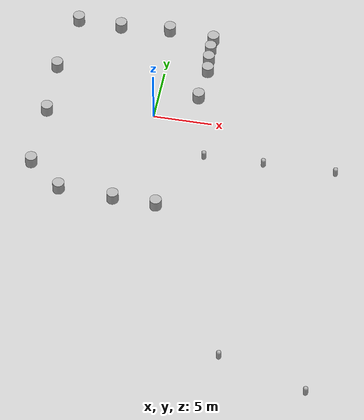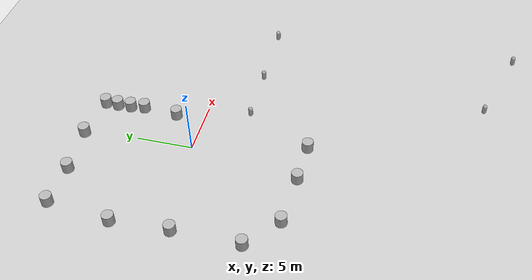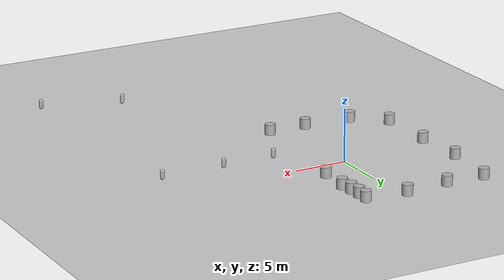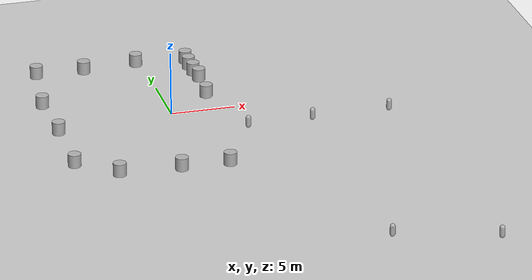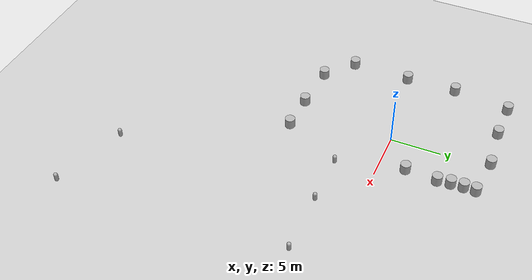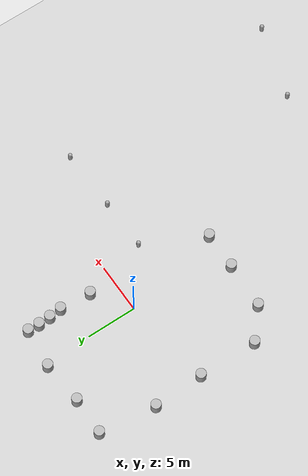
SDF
<sdf version='1.9'>
  <world name='empty'>
    <physics name='1ms' type='ignored'>
      <max_step_size>0.001</max_step_size>
      <real_time_factor>1</real_time_factor>
      <real_time_update_rate>1000</real_time_update_rate>
    </physics>
    <plugin name='gz::sim::systems::Physics' filename='gz-sim-physics-system'/>
    <plugin name='gz::sim::systems::UserCommands' filename='gz-sim-user-commands-system'/>
    <plugin name='gz::sim::systems::SceneBroadcaster' filename='gz-sim-scene-broadcaster-system'/>
    <plugin name='gz::sim::systems::Sensors' filename='gz-sim-sensors-system'>
      <render_engine>ogre2</render_engine>
    </plugin>
    <plugin name='gz::sim::systems::Contact' filename='gz-sim-contact-system'/>
    <gravity>0 0 -9.8</gravity>
    <magnetic_field>6e-06 2.3e-05 -4.2e-05</magnetic_field>
    <atmosphere type='adiabatic'/>
    <scene>
      <ambient>0.4 0.4 0.4 1</ambient>
      <background>0.7 0.7 0.7 1</background>
      <shadows>true</shadows>
    </scene>
    <model name='ground_plane'>
      <static>true</static>
      <link name='link'>
        <collision name='collision'>
          <geometry>
            <plane>
              <normal>0 0 1</normal>
              <size>100 100</size>
            </plane>
          </geometry>
          <surface>
            <friction>
              <ode/>
            </friction>
            <bounce/>
            <contact/>
          </surface>
        </collision>
        <visual name='visual'>
          <geometry>
            <plane>
              <normal>0 0 1</normal>
              <size>100 100</size>
            </plane>
          </geometry>
          <material>
            <ambient>0.8 0.8 0.8 1</ambient>
            <diffuse>0.8 0.8 0.8 1</diffuse>
            <specular>0.8 0.8 0.8 1</specular>
          </material>
        </visual>
        <pose>0 0 0 0 -0 0</pose>
        <inertial>
          <pose>0 0 0 0 -0 0</pose>
          <mass>1</mass>
          <inertia>
            <ixx>1</ixx>
            <ixy>0</ixy>
            <ixz>0</ixz>
            <iyy>1</iyy>
            <iyz>0</iyz>
            <izz>1</izz>
          </inertia>
        </inertial>
        <enable_wind>false</enable_wind>
      </link>
      <pose>0 0 0 0 -0 0</pose>
      <self_collide>false</self_collide>
    </model>
    <model name='capsule'>
      <pose>5.0599 -3.9568 0.5 0 -0 0</pose>
      <link name='capsule_link'>
        <inertial>
          <inertia>
            <ixx>0.074153999999999998</ixx>
            <ixy>0</ixy>
            <ixz>0</ixz>
            <iyy>0.074153999999999998</iyy>
            <iyz>0</iyz>
            <izz>0.018769000000000001</izz>
          </inertia>
          <mass>1</mass>
          <pose>0 0 0 0 -0 0</pose>
        </inertial>
        <collision name='capsule_collision'>
          <geometry>
            <capsule>
              <radius>0.20000000000000001</radius>
              <length>0.59999999999999998</length>
            </capsule>
          </geometry>
          <surface>
            <friction>
              <ode/>
            </friction>
            <bounce/>
            <contact/>
          </surface>
        </collision>
        <visual name='capsule_visual'>
          <geometry>
            <capsule>
              <radius>0.20000000000000001</radius>
              <length>0.59999999999999998</length>
            </capsule>
          </geometry>
          <material>
            <ambient>0.3 0.3 0.3 1</ambient>
            <diffuse>0.7 0.7 0.7 1</diffuse>
            <specular>1 1 1 1</specular>
          </material>
        </visual>
        <pose>0 0 0 0 -0 0</pose>
        <enable_wind>false</enable_wind>
      </link>
      <static>false</static>
      <self_collide>false</self_collide>
    </model>
    <model name='capsule_0'>
      <pose>10.1602 -3.87612 0.5 0 -0 0</pose>
      <link name='capsule_link'>
        <inertial>
          <inertia>
            <ixx>0.074153999999999998</ixx>
            <ixy>0</ixy>
            <ixz>0</ixz>
            <iyy>0.074153999999999998</iyy>
            <iyz>0</iyz>
            <izz>0.018769000000000001</izz>
          </inertia>
          <mass>1</mass>
          <pose>0 0 0 0 -0 0</pose>
        </inertial>
        <collision name='capsule_collision'>
          <geometry>
            <capsule>
              <radius>0.20000000000000001</radius>
              <length>0.59999999999999998</length>
            </capsule>
          </geometry>
          <surface>
            <friction>
              <ode/>
            </friction>
            <bounce/>
            <contact/>
          </surface>
        </collision>
        <visual name='capsule_visual'>
          <geometry>
            <capsule>
              <radius>0.20000000000000001</radius>
              <length>0.59999999999999998</length>
            </capsule>
          </geometry>
          <material>
            <ambient>0.3 0.3 0.3 1</ambient>
            <diffuse>0.7 0.7 0.7 1</diffuse>
            <specular>1 1 1 1</specular>
          </material>
        </visual>
        <pose>0 0 0 0 -0 0</pose>
        <enable_wind>false</enable_wind>
      </link>
      <static>false</static>
      <self_collide>false</self_collide>
    </model>
    <model name='capsule_1'>
      <pose>16.3104 -3.76735 0.5 0 -0 0</pose>
      <link name='capsule_link'>
        <inertial>
          <inertia>
            <ixx>0.074153999999999998</ixx>
            <ixy>0</ixy>
            <ixz>0</ixz>
            <iyy>0.074153999999999998</iyy>
            <iyz>0</iyz>
            <izz>0.018769000000000001</izz>
          </inertia>
          <mass>1</mass>
          <pose>0 0 0 0 -0 0</pose>
        </inertial>
        <collision name='capsule_collision'>
          <geometry>
            <capsule>
              <radius>0.20000000000000001</radius>
              <length>0.59999999999999998</length>
            </capsule>
          </geometry>
          <surface>
            <friction>
              <ode/>
            </friction>
            <bounce/>
            <contact/>
          </surface>
        </collision>
        <visual name='capsule_visual'>
          <geometry>
            <capsule>
              <radius>0.20000000000000001</radius>
              <length>0.59999999999999998</length>
            </capsule>
          </geometry>
          <material>
            <ambient>0.3 0.3 0.3 1</ambient>
            <diffuse>0.7 0.7 0.7 1</diffuse>
            <specular>1 1 1 1</specular>
          </material>
        </visual>
        <pose>0 0 0 0 -0 0</pose>
        <enable_wind>false</enable_wind>
      </link>
      <static>false</static>
      <self_collide>false</self_collide>
    </model>
    <model name='capsule_2'>
      <pose>10.0603 -24.6066 0.5 0 -0 0</pose>
      <link name='capsule_link'>
        <inertial>
          <inertia>
            <ixx>0.074153999999999998</ixx>
            <ixy>0</ixy>
            <ixz>0</ixz>
            <iyy>0.074153999999999998</iyy>
            <iyz>0</iyz>
            <izz>0.018769000000000001</izz>
          </inertia>
          <mass>1</mass>
          <pose>0 0 0 0 -0 0</pose>
        </inertial>
        <collision name='capsule_collision'>
          <geometry>
            <capsule>
              <radius>0.20000000000000001</radius>
              <length>0.59999999999999998</length>
            </capsule>
          </geometry>
          <surface>
            <friction>
              <ode/>
            </friction>
            <bounce/>
            <contact/>
          </surface>
        </collision>
        <visual name='capsule_visual'>
          <geometry>
            <capsule>
              <radius>0.20000000000000001</radius>
              <length>0.59999999999999998</length>
            </capsule>
          </geometry>
          <material>
            <ambient>0.3 0.3 0.3 1</ambient>
            <diffuse>0.7 0.7 0.7 1</diffuse>
            <specular>1 1 1 1</specular>
          </material>
        </visual>
        <pose>0 0 0 0 -0 0</pose>
        <enable_wind>false</enable_wind>
      </link>
      <static>false</static>
      <self_collide>false</self_collide>
    </model>
    <model name='capsule_3'>
      <pose>17.519 -26.8866 0.5 0 -0 0</pose>
      <link name='capsule_link'>
        <inertial>
          <inertia>
            <ixx>0.074153999999999998</ixx>
            <ixy>0</ixy>
            <ixz>0</ixz>
            <iyy>0.074153999999999998</iyy>
            <iyz>0</iyz>
            <izz>0.018769000000000001</izz>
          </inertia>
          <mass>1</mass>
          <pose>0 0 0 0 -0 0</pose>
        </inertial>
        <collision name='capsule_collision'>
          <geometry>
            <capsule>
              <radius>0.20000000000000001</radius>
              <length>0.59999999999999998</length>
            </capsule>
          </geometry>
          <surface>
            <friction>
              <ode/>
            </friction>
            <bounce/>
            <contact/>
          </surface>
        </collision>
        <visual name='capsule_visual'>
          <geometry>
            <capsule>
              <radius>0.20000000000000001</radius>
              <length>0.59999999999999998</length>
            </capsule>
          </geometry>
          <material>
            <ambient>0.3 0.3 0.3 1</ambient>
            <diffuse>0.7 0.7 0.7 1</diffuse>
            <specular>1 1 1 1</specular>
          </material>
        </visual>
        <pose>0 0 0 0 -0 0</pose>
        <enable_wind>false</enable_wind>
      </link>
      <static>false</static>
      <self_collide>false</self_collide>
    </model>
    <model name='cylinder'>
      <pose>3.47884 9.35432 0.499999 0 -0 0</pose>
      <link name='cylinder_link'>
        <inertial>
          <inertia>
            <ixx>0.14580000000000001</ixx>
            <ixy>0</ixy>
            <ixz>0</ixz>
            <iyy>0.14580000000000001</iyy>
            <iyz>0</iyz>
            <izz>0.125</izz>
          </inertia>
          <mass>1</mass>
          <pose>0 0 0 0 -0 0</pose>
        </inertial>
        <collision name='cylinder_collision'>
          <geometry>
            <cylinder>
              <radius>0.5</radius>
              <length>1</length>
            </cylinder>
          </geometry>
          <surface>
            <friction>
              <ode/>
            </friction>
            <bounce/>
            <contact/>
          </surface>
        </collision>
        <visual name='cylinder_visual'>
          <geometry>
            <cylinder>
              <radius>0.5</radius>
              <length>1</length>
            </cylinder>
          </geometry>
          <material>
            <ambient>0.3 0.3 0.3 1</ambient>
            <diffuse>0.7 0.7 0.7 1</diffuse>
            <specular>1 1 1 1</specular>
          </material>
        </visual>
        <pose>0 0 0 0 -0 0</pose>
        <enable_wind>false</enable_wind>
      </link>
      <static>false</static>
      <self_collide>false</self_collide>
    </model>
    <model name='cylinder_0'>
      <pose>3.44941 8.1836 0.499999 0 0 0</pose>
      <link name='cylinder_link'>
        <inertial>
          <inertia>
            <ixx>0.14580000000000001</ixx>
            <ixy>0</ixy>
            <ixz>0</ixz>
            <iyy>0.14580000000000001</iyy>
            <iyz>0</iyz>
            <izz>0.125</izz>
          </inertia>
          <mass>1</mass>
          <pose>0 0 0 0 -0 0</pose>
        </inertial>
        <collision name='cylinder_collision'>
          <geometry>
            <cylinder>
              <radius>0.5</radius>
              <length>1</length>
            </cylinder>
          </geometry>
          <surface>
            <friction>
              <ode/>
            </friction>
            <bounce/>
            <contact/>
          </surface>
        </collision>
        <visual name='cylinder_visual'>
          <geometry>
            <cylinder>
              <radius>0.5</radius>
              <length>1</length>
            </cylinder>
          </geometry>
          <material>
            <ambient>0.3 0.3 0.3 1</ambient>
            <diffuse>0.7 0.7 0.7 1</diffuse>
            <specular>1 1 1 1</specular>
          </material>
        </visual>
        <pose>0 0 0 0 -0 0</pose>
        <enable_wind>false</enable_wind>
      </link>
      <static>false</static>
      <self_collide>false</self_collide>
    </model>
    <model name='cylinder_1'>
      <pose>3.50703 6.96463 0.499999 0 0 0</pose>
      <link name='cylinder_link'>
        <inertial>
          <inertia>
            <ixx>0.14580000000000001</ixx>
            <ixy>0</ixy>
            <ixz>0</ixz>
            <iyy>0.14580000000000001</iyy>
            <iyz>0</iyz>
            <izz>0.125</izz>
          </inertia>
          <mass>1</mass>
          <pose>0 0 0 0 -0 0</pose>
        </inertial>
        <collision name='cylinder_collision'>
          <geometry>
            <cylinder>
              <radius>0.5</radius>
              <length>1</length>
            </cylinder>
          </geometry>
          <surface>
            <friction>
              <ode/>
            </friction>
            <bounce/>
            <contact/>
          </surface>
        </collision>
        <visual name='cylinder_visual'>
          <geometry>
            <cylinder>
              <radius>0.5</radius>
              <length>1</length>
            </cylinder>
          </geometry>
          <material>
            <ambient>0.3 0.3 0.3 1</ambient>
            <diffuse>0.7 0.7 0.7 1</diffuse>
            <specular>1 1 1 1</specular>
          </material>
        </visual>
        <pose>0 0 0 0 -0 0</pose>
        <enable_wind>false</enable_wind>
      </link>
      <static>false</static>
      <self_collide>false</self_collide>
    </model>
    <model name='cylinder_2'>
      <pose>3.64827 5.68885 0.499999 -0 -0 0</pose>
      <link name='cylinder_link'>
        <inertial>
          <inertia>
            <ixx>0.14580000000000001</ixx>
            <ixy>0</ixy>
            <ixz>0</ixz>
            <iyy>0.14580000000000001</iyy>
            <iyz>0</iyz>
            <izz>0.125</izz>
          </inertia>
          <mass>1</mass>
          <pose>0 0 0 0 -0 0</pose>
        </inertial>
        <collision name='cylinder_collision'>
          <geometry>
            <cylinder>
              <radius>0.5</radius>
              <length>1</length>
            </cylinder>
          </geometry>
          <surface>
            <friction>
              <ode/>
            </friction>
            <bounce/>
            <contact/>
          </surface>
        </collision>
        <visual name='cylinder_visual'>
          <geometry>
            <cylinder>
              <radius>0.5</radius>
              <length>1</length>
            </cylinder>
          </geometry>
          <material>
            <ambient>0.3 0.3 0.3 1</ambient>
            <diffuse>0.7 0.7 0.7 1</diffuse>
            <specular>1 1 1 1</specular>
          </material>
        </visual>
        <pose>0 0 0 0 -0 0</pose>
        <enable_wind>false</enable_wind>
      </link>
      <static>false</static>
      <self_collide>false</self_collide>
    </model>
    <model name='cylinder_3'>
      <pose>3.42148 2.5499 0.499999 0 -0 -0</pose>
      <link name='cylinder_link'>
        <inertial>
          <inertia>
            <ixx>0.14580000000000001</ixx>
            <ixy>0</ixy>
            <ixz>0</ixz>
            <iyy>0.14580000000000001</iyy>
            <iyz>0</iyz>
            <izz>0.125</izz>
          </inertia>
          <mass>1</mass>
          <pose>0 0 0 0 -0 0</pose>
        </inertial>
        <collision name='cylinder_collision'>
          <geometry>
            <cylinder>
              <radius>0.5</radius>
              <length>1</length>
            </cylinder>
          </geometry>
          <surface>
            <friction>
              <ode/>
            </friction>
            <bounce/>
            <contact/>
          </surface>
        </collision>
        <visual name='cylinder_visual'>
          <geometry>
            <cylinder>
              <radius>0.5</radius>
              <length>1</length>
            </cylinder>
          </geometry>
          <material>
            <ambient>0.3 0.3 0.3 1</ambient>
            <diffuse>0.7 0.7 0.7 1</diffuse>
            <specular>1 1 1 1</specular>
          </material>
        </visual>
        <pose>0 0 0 0 -0 0</pose>
        <enable_wind>false</enable_wind>
      </link>
      <static>false</static>
      <self_collide>false</self_collide>
    </model>
    <model name='cylinder_4'>
      <pose>-0.451186 9.78501 0.499999 -0 0 -0</pose>
      <link name='cylinder_link'>
        <inertial>
          <inertia>
            <ixx>0.14580000000000001</ixx>
            <ixy>0</ixy>
            <ixz>0</ixz>
            <iyy>0.14580000000000001</iyy>
            <iyz>0</iyz>
            <izz>0.125</izz>
          </inertia>
          <mass>1</mass>
          <pose>0 0 0 0 -0 0</pose>
        </inertial>
        <collision name='cylinder_collision'>
          <geometry>
            <cylinder>
              <radius>0.5</radius>
              <length>1</length>
            </cylinder>
          </geometry>
          <surface>
            <friction>
              <ode/>
            </friction>
            <bounce/>
            <contact/>
          </surface>
        </collision>
        <visual name='cylinder_visual'>
          <geometry>
            <cylinder>
              <radius>0.5</radius>
              <length>1</length>
            </cylinder>
          </geometry>
          <material>
            <ambient>0.3 0.3 0.3 1</ambient>
            <diffuse>0.7 0.7 0.7 1</diffuse>
            <specular>1 1 1 1</specular>
          </material>
        </visual>
        <pose>0 0 0 0 -0 0</pose>
        <enable_wind>false</enable_wind>
      </link>
      <static>false</static>
      <self_collide>false</self_collide>
    </model>
    <model name='cylinder_5'>
      <pose>-4.73717 9.44724 0.499999 0 0 0</pose>
      <link name='cylinder_link'>
        <inertial>
          <inertia>
            <ixx>0.14580000000000001</ixx>
            <ixy>0</ixy>
            <ixz>0</ixz>
            <iyy>0.14580000000000001</iyy>
            <iyz>0</iyz>
            <izz>0.125</izz>
          </inertia>
          <mass>1</mass>
          <pose>0 0 0 0 -0 0</pose>
        </inertial>
        <collision name='cylinder_collision'>
          <geometry>
            <cylinder>
              <radius>0.5</radius>
              <length>1</length>
            </cylinder>
          </geometry>
          <surface>
            <friction>
              <ode/>
            </friction>
            <bounce/>
            <contact/>
          </surface>
        </collision>
        <visual name='cylinder_visual'>
          <geometry>
            <cylinder>
              <radius>0.5</radius>
              <length>1</length>
            </cylinder>
          </geometry>
          <material>
            <ambient>0.3 0.3 0.3 1</ambient>
            <diffuse>0.7 0.7 0.7 1</diffuse>
            <specular>1 1 1 1</specular>
          </material>
        </visual>
        <pose>0 0 0 0 -0 0</pose>
        <enable_wind>false</enable_wind>
      </link>
      <static>false</static>
      <self_collide>false</self_collide>
    </model>
    <model name='cylinder_6'>
      <pose>-8.52392 9.53213 0.499999 0 -0 -0</pose>
      <link name='cylinder_link'>
        <inertial>
          <inertia>
            <ixx>0.14580000000000001</ixx>
            <ixy>0</ixy>
            <ixz>0</ixz>
            <iyy>0.14580000000000001</iyy>
            <iyz>0</iyz>
            <izz>0.125</izz>
          </inertia>
          <mass>1</mass>
          <pose>0 0 0 0 -0 0</pose>
        </inertial>
        <collision name='cylinder_collision'>
          <geometry>
            <cylinder>
              <radius>0.5</radius>
              <length>1</length>
            </cylinder>
          </geometry>
          <surface>
            <friction>
              <ode/>
            </friction>
            <bounce/>
            <contact/>
          </surface>
        </collision>
        <visual name='cylinder_visual'>
          <geometry>
            <cylinder>
              <radius>0.5</radius>
              <length>1</length>
            </cylinder>
          </geometry>
          <material>
            <ambient>0.3 0.3 0.3 1</ambient>
            <diffuse>0.7 0.7 0.7 1</diffuse>
            <specular>1 1 1 1</specular>
          </material>
        </visual>
        <pose>0 0 0 0 -0 0</pose>
        <enable_wind>false</enable_wind>
      </link>
      <static>false</static>
      <self_collide>false</self_collide>
    </model>
    <model name='cylinder_7'>
      <pose>-9.27352 3.85421 0.499999 0 0 -0</pose>
      <link name='cylinder_link'>
        <inertial>
          <inertia>
            <ixx>0.14580000000000001</ixx>
            <ixy>0</ixy>
            <ixz>0</ixz>
            <iyy>0.14580000000000001</iyy>
            <iyz>0</iyz>
            <izz>0.125</izz>
          </inertia>
          <mass>1</mass>
          <pose>0 0 0 0 -0 0</pose>
        </inertial>
        <collision name='cylinder_collision'>
          <geometry>
            <cylinder>
              <radius>0.5</radius>
              <length>1</length>
            </cylinder>
          </geometry>
          <surface>
            <friction>
              <ode/>
            </friction>
            <bounce/>
            <contact/>
          </surface>
        </collision>
        <visual name='cylinder_visual'>
          <geometry>
            <cylinder>
              <radius>0.5</radius>
              <length>1</length>
            </cylinder>
          </geometry>
          <material>
            <ambient>0.3 0.3 0.3 1</ambient>
            <diffuse>0.7 0.7 0.7 1</diffuse>
            <specular>1 1 1 1</specular>
          </material>
        </visual>
        <pose>0 0 0 0 -0 0</pose>
        <enable_wind>false</enable_wind>
      </link>
      <static>false</static>
      <self_collide>false</self_collide>
    </model>
    <model name='cylinder_8'>
      <pose>-9.10615 -1.22627 0.499999 -0 0 -0</pose>
      <link name='cylinder_link'>
        <inertial>
          <inertia>
            <ixx>0.14580000000000001</ixx>
            <ixy>0</ixy>
            <ixz>0</ixz>
            <iyy>0.14580000000000001</iyy>
            <iyz>0</iyz>
            <izz>0.125</izz>
          </inertia>
          <mass>1</mass>
          <pose>0 0 0 0 -0 0</pose>
        </inertial>
        <collision name='cylinder_collision'>
          <geometry>
            <cylinder>
              <radius>0.5</radius>
              <length>1</length>
            </cylinder>
          </geometry>
          <surface>
            <friction>
              <ode/>
            </friction>
            <bounce/>
            <contact/>
          </surface>
        </collision>
        <visual name='cylinder_visual'>
          <geometry>
            <cylinder>
              <radius>0.5</radius>
              <length>1</length>
            </cylinder>
          </geometry>
          <material>
            <ambient>0.3 0.3 0.3 1</ambient>
            <diffuse>0.7 0.7 0.7 1</diffuse>
            <specular>1 1 1 1</specular>
          </material>
        </visual>
        <pose>0 0 0 0 -0 0</pose>
        <enable_wind>false</enable_wind>
      </link>
      <static>false</static>
      <self_collide>false</self_collide>
    </model>
    <model name='cylinder_9'>
      <pose>-9.19593 -7.15028 0.499999 0 -0 0</pose>
      <link name='cylinder_link'>
        <inertial>
          <inertia>
            <ixx>0.14580000000000001</ixx>
            <ixy>0</ixy>
            <ixz>0</ixz>
            <iyy>0.14580000000000001</iyy>
            <iyz>0</iyz>
            <izz>0.125</izz>
          </inertia>
          <mass>1</mass>
          <pose>0 0 0 0 -0 0</pose>
        </inertial>
        <collision name='cylinder_collision'>
          <geometry>
            <cylinder>
              <radius>0.5</radius>
              <length>1</length>
            </cylinder>
          </geometry>
          <surface>
            <friction>
              <ode/>
            </friction>
            <bounce/>
            <contact/>
          </surface>
        </collision>
        <visual name='cylinder_visual'>
          <geometry>
            <cylinder>
              <radius>0.5</radius>
              <length>1</length>
            </cylinder>
          </geometry>
          <material>
            <ambient>0.3 0.3 0.3 1</ambient>
            <diffuse>0.7 0.7 0.7 1</diffuse>
            <specular>1 1 1 1</specular>
          </material>
        </visual>
        <pose>0 0 0 0 -0 0</pose>
        <enable_wind>false</enable_wind>
      </link>
      <static>false</static>
      <self_collide>false</self_collide>
    </model>
    <model name='cylinder_10'>
      <pose>-6.32573 -9.57624 0.499999 0 -0 -0</pose>
      <link name='cylinder_link'>
        <inertial>
          <inertia>
            <ixx>0.14580000000000001</ixx>
            <ixy>0</ixy>
            <ixz>0</ixz>
            <iyy>0.14580000000000001</iyy>
            <iyz>0</iyz>
            <izz>0.125</izz>
          </inertia>
          <mass>1</mass>
          <pose>0 0 0 0 -0 0</pose>
        </inertial>
        <collision name='cylinder_collision'>
          <geometry>
            <cylinder>
              <radius>0.5</radius>
              <length>1</length>
            </cylinder>
          </geometry>
          <surface>
            <friction>
              <ode/>
            </friction>
            <bounce/>
            <contact/>
          </surface>
        </collision>
        <visual name='cylinder_visual'>
          <geometry>
            <cylinder>
              <radius>0.5</radius>
              <length>1</length>
            </cylinder>
          </geometry>
          <material>
            <ambient>0.3 0.3 0.3 1</ambient>
            <diffuse>0.7 0.7 0.7 1</diffuse>
            <specular>1 1 1 1</specular>
          </material>
        </visual>
        <pose>0 0 0 0 -0 0</pose>
        <enable_wind>false</enable_wind>
      </link>
      <static>false</static>
      <self_collide>false</self_collide>
    </model>
    <model name='cylinder_11'>
      <pose>-1.64455 -9.82427 0.499999 0 0 0</pose>
      <link name='cylinder_link'>
        <inertial>
          <inertia>
            <ixx>0.14580000000000001</ixx>
            <ixy>0</ixy>
            <ixz>0</ixz>
            <iyy>0.14580000000000001</iyy>
            <iyz>0</iyz>
            <izz>0.125</izz>
          </inertia>
          <mass>1</mass>
          <pose>0 0 0 0 -0 0</pose>
        </inertial>
        <collision name='cylinder_collision'>
          <geometry>
            <cylinder>
              <radius>0.5</radius>
              <length>1</length>
            </cylinder>
          </geometry>
          <surface>
            <friction>
              <ode/>
            </friction>
            <bounce/>
            <contact/>
          </surface>
        </collision>
        <visual name='cylinder_visual'>
          <geometry>
            <cylinder>
              <radius>0.5</radius>
              <length>1</length>
            </cylinder>
          </geometry>
          <material>
            <ambient>0.3 0.3 0.3 1</ambient>
            <diffuse>0.7 0.7 0.7 1</diffuse>
            <specular>1 1 1 1</specular>
          </material>
        </visual>
        <pose>0 0 0 0 -0 0</pose>
        <enable_wind>false</enable_wind>
      </link>
      <static>false</static>
      <self_collide>false</self_collide>
    </model>
    <model name='cylinder_12'>
      <pose>2.04807 -9.9011 0.499999 0 0 0</pose>
      <link name='cylinder_link'>
        <inertial>
          <inertia>
            <ixx>0.14580000000000001</ixx>
            <ixy>0</ixy>
            <ixz>0</ixz>
            <iyy>0.14580000000000001</iyy>
            <iyz>0</iyz>
            <izz>0.125</izz>
          </inertia>
          <mass>1</mass>
          <pose>0 0 0 0 -0 0</pose>
        </inertial>
        <collision name='cylinder_collision'>
          <geometry>
            <cylinder>
              <radius>0.5</radius>
              <length>1</length>
            </cylinder>
          </geometry>
          <surface>
            <friction>
              <ode/>
            </friction>
            <bounce/>
            <contact/>
          </surface>
        </collision>
        <visual name='cylinder_visual'>
          <geometry>
            <cylinder>
              <radius>0.5</radius>
              <length>1</length>
            </cylinder>
          </geometry>
          <material>
            <ambient>0.3 0.3 0.3 1</ambient>
            <diffuse>0.7 0.7 0.7 1</diffuse>
            <specular>1 1 1 1</specular>
          </material>
        </visual>
        <pose>0 0 0 0 -0 0</pose>
        <enable_wind>false</enable_wind>
      </link>
      <static>false</static>
      <self_collide>false</self_collide>
    </model>
    <light name='sun' type='directional'>
      <pose>0 0 10 0 -0 0</pose>
      <cast_shadows>true</cast_shadows>
      <intensity>1</intensity>
      <direction>-0.5 0.1 -0.9</direction>
      <diffuse>0.8 0.8 0.8 1</diffuse>
      <specular>0.2 0.2 0.2 1</specular>
      <attenuation>
        <range>1000</range>
        <linear>0.01</linear>
        <constant>0.90000000000000002</constant>
        <quadratic>0.001</quadratic>
      </attenuation>
      <spot>
        <inner_angle>0</inner_angle>
        <outer_angle>0</outer_angle>
        <falloff>0</falloff>
      </spot>
    </light>
  </world>
</sdf>
